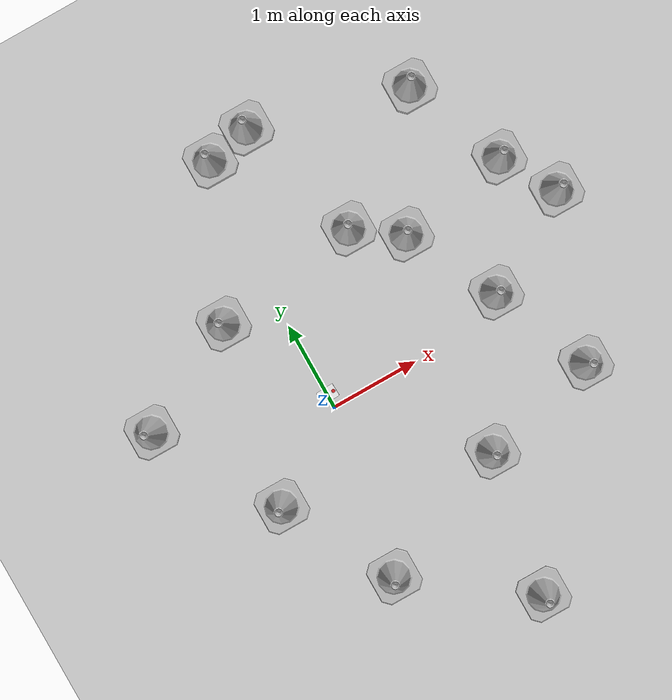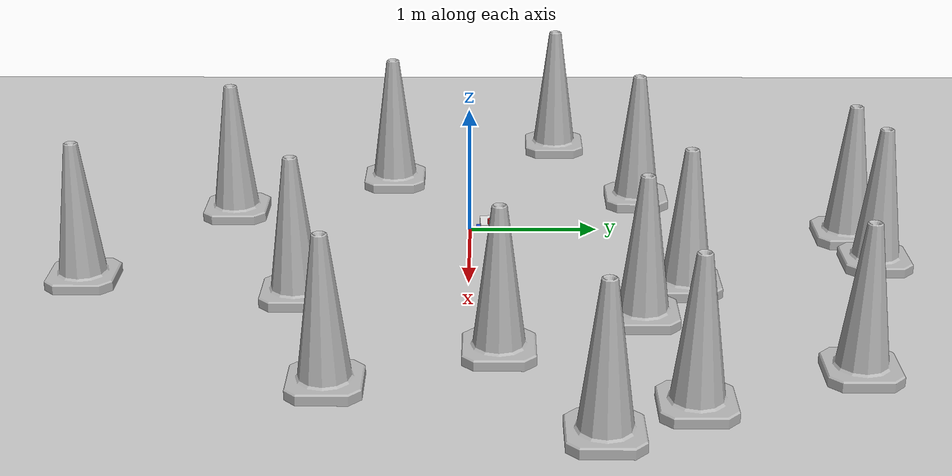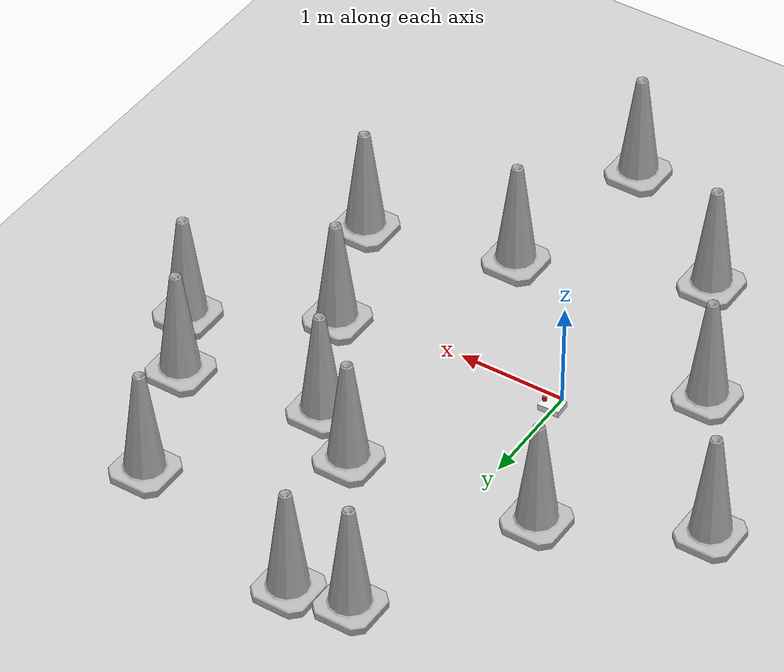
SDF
<sdf version="1.7">
 <world name="default">
  <light name="sun" type="directional">
   <pose>0 0 10 0 -0 0</pose>
   <diffuse>0.8 0.8 0.8 1</diffuse>
   <specular>0.2 0.2 0.2 1</specular>
   <attenuation>
    <range>1000</range>
    <constant>0.9</constant>
    <linear>0.01</linear>
    <quadratic>0.001</quadratic>
   </attenuation>
   <direction>-0.5 0.1 -0.9</direction>
   <spot><inner_angle>0</inner_angle><outer_angle>0</outer_angle><falloff>0</falloff></spot>
  </light>
  <model name="ground_plane">
   <static>1</static>
   <link name="link">
    <collision name="collision">
     <geometry><plane><normal>0 0 1</normal><size>100 100</size></plane></geometry>
     <surface><friction><ode><mu>100</mu><mu2>50</mu2></ode></friction></surface>
    </collision>
    <visual name="visual">
     <cast_shadows>0</cast_shadows>
     <geometry><plane><normal>0 0 1</normal><size>100 100</size></plane></geometry>
     <material>
      <script><uri>file://media/materials/scripts/gazebo.material</uri><name>Gazebo/Grey</name></script>
     </material>
    </visual>
   </link>
  </model>
  <gravity>0 0 -9.8</gravity>
  <magnetic_field>6e-06 2.3e-05 -4.2e-05</magnetic_field>
  <atmosphere type="adiabatic"/>
  <physics type="ode">
   <max_step_size>0.001</max_step_size>
   <real_time_factor>1</real_time_factor>
   <real_time_update_rate>1000</real_time_update_rate>
  </physics>
  <scene><ambient>0.4 0.4 0.4 1</ambient><background>0.7 0.7 0.7 1</background><shadows>1</shadows></scene>
  <audio><device>default</device></audio>
  <spherical_coordinates>
   <surface_model>EARTH_WGS84</surface_model>
   <latitude_deg>0</latitude_deg>
   <longitude_deg>0</longitude_deg>
   <elevation>0</elevation>
   <heading_deg>0</heading_deg>
  </spherical_coordinates>
  <model name="robot">
   <link name="base_link">
    <inertial>
     <pose>0.052857 0 0.032857 0 -0 0</pose>
     <mass>0.7</mass>
     <inertia>
      <ixx>0.00146276</ixx>
      <ixy>0</ixy>
      <ixz>0.000425714</ixz>
      <iyy>0.00668621</iyy>
      <iyz>0</iyz>
      <izz>0.00713609</izz>
     </inertia>
    </inertial>
    <collision name="base_link_fixed_joint_lump__chassis_collision">
     <pose>0.01 0 0.03 0 -0 0</pose>
     <geometry><box><size>0.2 0.15 0.06</size></box></geometry>
    </collision>
    <collision name="base_link_fixed_joint_lump__caster_wheel_collision_1">
     <pose>0.07 0 0 0 -0 0</pose>
     <geometry><sphere><radius>0.021</radius></sphere></geometry>
     <surface><friction><ode><mu>0.001</mu><mu2>0.001</mu2></ode></friction></surface>
    </collision>
    <collision name="base_link_fixed_joint_lump__laser_frame_collision_2">
     <pose>0.08 0 0.08 0 -0 0</pose>
     <geometry><cylinder><length>0.04</length><radius>0.02</radius></cylinder></geometry>
    </collision>
    <visual name="base_link_fixed_joint_lump__chassis_visual">
     <pose>0.01 0 0.03 0 -0 0</pose>
     <geometry><box><size>0.2 0.15 0.06</size></box></geometry>
     <material>
      <script><name>Gazebo/White</name><uri>file://media/materials/scripts/gazebo.material</uri></script>
     </material>
    </visual>
    <visual name="base_link_fixed_joint_lump__caster_wheel_visual_1">
     <pose>0.07 0 0 0 -0 0</pose>
     <geometry><sphere><radius>0.021</radius></sphere></geometry>
     <material>
      <script><name>Gazebo/Black</name><uri>file://media/materials/scripts/gazebo.material</uri></script>
     </material>
    </visual>
    <visual name="base_link_fixed_joint_lump__laser_frame_visual_2">
     <pose>0.08 0 0.08 0 -0 0</pose>
     <geometry><cylinder><length>0.04</length><radius>0.02</radius></cylinder></geometry>
     <material>
      <script><name>Gazebo/Red</name><uri>file://media/materials/scripts/gazebo.material</uri></script>
     </material>
    </visual>
    <sensor name="laser" type="ray">
     <visualize>0</visualize>
     <update_rate>10</update_rate>
     <ray>
      <scan>
       <horizontal>
        <samples>682</samples>
        <min_angle>-2.094</min_angle>
        <max_angle>2.094</max_angle>
        <resolution>1</resolution>
       </horizontal>
       <vertical><samples>1</samples><min_angle>0</min_angle><max_angle>0</max_angle></vertical>
      </scan>
      <range><min>0.06</min><max>12</max></range>
     </ray>
     <plugin name="laser_controller" filename="libgazebo_ros_ray_sensor.so">
      <ros><argument>~/out:=scan</argument></ros>
      <output_type>sensor_msgs/LaserScan</output_type>
      <frame_name>laser_frame</frame_name>
     </plugin>
     <pose>0.08 0 0.08 0 -0 0</pose>
    </sensor>
   </link>
   <joint name="left_wheel_joint" type="revolute">
    <pose relative_to="base_link">0 0.09 0 -1.5708 0 0</pose>
    <parent>base_link</parent>
    <child>left_wheel</child>
    <axis>
     <xyz>0 0 1</xyz>
     <limit><lower>-1e+16</lower><upper>1e+16</upper></limit>
     <dynamics><spring_reference>0</spring_reference><spring_stiffness>0</spring_stiffness></dynamics>
    </axis>
   </joint>
   <link name="left_wheel">
    <pose relative_to="left_wheel_joint">0 0 0 0 -0 0</pose>
    <inertial>
     <pose>0 0.09 0 0 -0 0</pose>
     <mass>0.1</mass>
     <inertia>
      <ixx>1.8525e-05</ixx>
      <ixy>0</ixy>
      <ixz>0</ixz>
      <iyy>1.8525e-05</iyy>
      <iyz>0</iyz>
      <izz>2.205e-05</izz>
     </inertia>
    </inertial>
    <collision name="left_wheel_collision">
     <geometry><sphere><radius>0.021</radius></sphere></geometry>
    </collision>
    <visual name="left_wheel_visual">
     <geometry><cylinder><length>0.03</length><radius>0.021</radius></cylinder></geometry>
     <material>
      <script><name>Gazebo/Blue</name><uri>file://media/materials/scripts/gazebo.material</uri></script>
     </material>
    </visual>
   </link>
   <joint name="right_wheel_joint" type="revolute">
    <pose relative_to="base_link">0 -0.09 0 1.5708 -0 0</pose>
    <parent>base_link</parent>
    <child>right_wheel</child>
    <axis>
     <xyz>0 0 -1</xyz>
     <limit><lower>-1e+16</lower><upper>1e+16</upper></limit>
     <dynamics><spring_reference>0</spring_reference><spring_stiffness>0</spring_stiffness></dynamics>
    </axis>
   </joint>
   <link name="right_wheel">
    <pose relative_to="right_wheel_joint">0 0 0 0 -0 0</pose>
    <inertial>
     <mass>0.1</mass>
     <inertia>
      <ixx>1.8525e-05</ixx>
      <ixy>0</ixy>
      <ixz>0</ixz>
      <iyy>1.8525e-05</iyy>
      <iyz>0</iyz>
      <izz>2.205e-05</izz>
     </inertia>
    </inertial>
    <collision name="right_wheel_collision">
     <geometry><sphere><radius>0.021</radius></sphere></geometry>
    </collision>
    <visual name="right_wheel_visual">
     <geometry><cylinder><length>0.03</length><radius>0.021</radius></cylinder></geometry>
     <material>
      <script><name>Gazebo/Blue</name><uri>file://media/materials/scripts/gazebo.material</uri></script>
     </material>
    </visual>
   </link>
   <static>0</static>
   <plugin name="gazebo_ros2_control" filename="libgazebo_ros2_control.so">
    <parameters>/home/mpinho/proj_ws/install/msc_aut_vehicles/share/msc_aut_vehicles/config/my_controllers.yaml</parameters>
   </plugin>
   <pose>-0.003486 0.156328 0.020998 -1.9e-05 -2.7e-05 0.042737</pose>
  </model>
  <model name="Construction Cone">
   <link name="link">
    <collision name="collision">
     <geometry>
      <mesh><scale>10 10 10</scale><uri>model://construction_cone/meshes/construction_cone.dae</uri></mesh>
     </geometry>
    </collision>
    <visual name="visual">
     <geometry>
      <mesh><scale>10 10 10</scale><uri>model://construction_cone/meshes/construction_cone.dae</uri></mesh>
     </geometry>
    </visual>
    <inertial>
     <inertia><ixx>1</ixx><ixy>0</ixy><ixz>0</ixz><iyy>1</iyy><iyz>0</iyz><izz>1</izz></inertia>
     <mass>1</mass>
    </inertial>
   </link>
   <pose>-0.596068 1.3663 -0 2e-06 -2e-06 -0</pose>
  </model>
  <model name="Construction Cone_0">
   <link name="link">
    <collision name="collision">
     <geometry>
      <mesh><scale>10 10 10</scale><uri>model://construction_cone/meshes/construction_cone.dae</uri></mesh>
     </geometry>
    </collision>
    <visual name="visual">
     <geometry>
      <mesh><scale>10 10 10</scale><uri>model://construction_cone/meshes/construction_cone.dae</uri></mesh>
     </geometry>
    </visual>
    <inertial>
     <inertia><ixx>1</ixx><ixy>0</ixy><ixz>0</ixz><iyy>1</iyy><iyz>0</iyz><izz>1</izz></inertia>
     <mass>1</mass>
    </inertial>
   </link>
   <pose>1.07751 1.59669 -0 0 -0 0</pose>
  </model>
  <model name="Construction Cone_1">
   <link name="link">
    <collision name="collision">
     <geometry>
      <mesh><scale>10 10 10</scale><uri>model://construction_cone/meshes/construction_cone.dae</uri></mesh>
     </geometry>
    </collision>
    <visual name="visual">
     <geometry>
      <mesh><scale>10 10 10</scale><uri>model://construction_cone/meshes/construction_cone.dae</uri></mesh>
     </geometry>
    </visual>
    <inertial>
     <inertia><ixx>1</ixx><ixy>0</ixy><ixz>0</ixz><iyy>1</iyy><iyz>0</iyz><izz>1</izz></inertia>
     <mass>1</mass>
    </inertial>
   </link>
   <pose>1.58772 1.23802 -0 0 -0 0</pose>
  </model>
  <model name="Construction Cone_2">
   <link name="link">
    <collision name="collision">
     <geometry>
      <mesh><scale>10 10 10</scale><uri>model://construction_cone/meshes/construction_cone.dae</uri></mesh>
     </geometry>
    </collision>
    <visual name="visual">
     <geometry>
      <mesh><scale>10 10 10</scale><uri>model://construction_cone/meshes/construction_cone.dae</uri></mesh>
     </geometry>
    </visual>
    <inertial>
     <inertia><ixx>1</ixx><ixy>0</ixy><ixz>0</ixz><iyy>1</iyy><iyz>0</iyz><izz>1</izz></inertia>
     <mass>1</mass>
    </inertial>
   </link>
   <pose>2.12055 0.218716 -0 0 -1e-06 0</pose>
  </model>
  <model name="Construction Cone_3">
   <link name="link">
    <collision name="collision">
     <geometry>
      <mesh><scale>10 10 10</scale><uri>model://construction_cone/meshes/construction_cone.dae</uri></mesh>
     </geometry>
    </collision>
    <visual name="visual">
     <geometry>
      <mesh><scale>10 10 10</scale><uri>model://construction_cone/meshes/construction_cone.dae</uri></mesh>
     </geometry>
    </visual>
    <inertial>
     <inertia><ixx>1</ixx><ixy>0</ixy><ixz>0</ixz><iyy>1</iyy><iyz>0</iyz><izz>1</izz></inertia>
     <mass>1</mass>
    </inertial>
   </link>
   <pose>0.141401 2.9613 -9e-06 2e-06 -0 0</pose>
  </model>
  <model name="Construction Cone_4">
   <link name="link">
    <collision name="collision">
     <geometry>
      <mesh><scale>10 10 10</scale><uri>model://construction_cone/meshes/construction_cone.dae</uri></mesh>
     </geometry>
    </collision>
    <visual name="visual">
     <geometry>
      <mesh><scale>10 10 10</scale><uri>model://construction_cone/meshes/construction_cone.dae</uri></mesh>
     </geometry>
    </visual>
    <inertial>
     <inertia><ixx>1</ixx><ixy>0</ixy><ixz>0</ixz><iyy>1</iyy><iyz>0</iyz><izz>1</izz></inertia>
     <mass>1</mass>
    </inertial>
   </link>
   <pose>1.2454 -1.24994 -0 0 -0 0</pose>
  </model>
  <model name="Construction Cone_5">
   <link name="link">
    <collision name="collision">
     <geometry>
      <mesh><scale>10 10 10</scale><uri>model://construction_cone/meshes/construction_cone.dae</uri></mesh>
     </geometry>
    </collision>
    <visual name="visual">
     <geometry>
      <mesh><scale>10 10 10</scale><uri>model://construction_cone/meshes/construction_cone.dae</uri></mesh>
     </geometry>
    </visual>
    <inertial>
     <inertia><ixx>1</ixx><ixy>0</ixy><ixz>0</ixz><iyy>1</iyy><iyz>0</iyz><izz>1</izz></inertia>
     <mass>1</mass>
    </inertial>
   </link>
   <pose>-1.01785 -0.649715 -0 0 -0 0</pose>
  </model>
  <model name="Construction Cone_6">
   <link name="link">
    <collision name="collision">
     <geometry>
      <mesh><scale>10 10 10</scale><uri>model://construction_cone/meshes/construction_cone.dae</uri></mesh>
     </geometry>
    </collision>
    <visual name="visual">
     <geometry>
      <mesh><scale>10 10 10</scale><uri>model://construction_cone/meshes/construction_cone.dae</uri></mesh>
     </geometry>
    </visual>
    <inertial>
     <inertia><ixx>1</ixx><ixy>0</ixy><ixz>0</ixz><iyy>1</iyy><iyz>0</iyz><izz>1</izz></inertia>
     <mass>1</mass>
    </inertial>
   </link>
   <pose>-0.337349 -1.90152 -5e-06 -4e-06 1e-06 0</pose>
  </model>
  <model name="Construction Cone_7">
   <link name="link">
    <collision name="collision">
     <geometry>
      <mesh><scale>10 10 10</scale><uri>model://construction_cone/meshes/construction_cone.dae</uri></mesh>
     </geometry>
    </collision>
    <visual name="visual">
     <geometry>
      <mesh><scale>10 10 10</scale><uri>model://construction_cone/meshes/construction_cone.dae</uri></mesh>
     </geometry>
    </visual>
    <inertial>
     <inertia><ixx>1</ixx><ixy>0</ixy><ixz>0</ixz><iyy>1</iyy><iyz>0</iyz><izz>1</izz></inertia>
     <mass>1</mass>
    </inertial>
   </link>
   <pose>2.58772 -0.913314 -6e-06 2e-06 -0 0</pose>
  </model>
  <model name="Construction Cone_8">
   <link name="link">
    <collision name="collision">
     <geometry>
      <mesh><scale>10 10 10</scale><uri>model://construction_cone/meshes/construction_cone.dae</uri></mesh>
     </geometry>
    </collision>
    <visual name="visual">
     <geometry>
      <mesh><scale>10 10 10</scale><uri>model://construction_cone/meshes/construction_cone.dae</uri></mesh>
     </geometry>
    </visual>
    <inertial>
     <inertia><ixx>1</ixx><ixy>0</ixy><ixz>0</ixz><iyy>1</iyy><iyz>0</iyz><izz>1</izz></inertia>
     <mass>1</mass>
    </inertial>
   </link>
   <pose>-1.84292 0.730994 0 -0 -0 -0</pose>
  </model>
  <model name="Construction Cone_9">
   <link name="link">
    <collision name="collision">
     <geometry>
      <mesh><scale>10 10 10</scale><uri>model://construction_cone/meshes/construction_cone.dae</uri></mesh>
     </geometry>
    </collision>
    <visual name="visual">
     <geometry>
      <mesh><scale>10 10 10</scale><uri>model://construction_cone/meshes/construction_cone.dae</uri></mesh>
     </geometry>
    </visual>
    <inertial>
     <inertia><ixx>1</ixx><ixy>0</ixy><ixz>0</ixz><iyy>1</iyy><iyz>0</iyz><izz>1</izz></inertia>
     <mass>1</mass>
    </inertial>
   </link>
   <pose>2.86545 1.4686 -0 0 -1e-06 0</pose>
  </model>
  <model name="Construction Cone_10">
   <link name="link">
    <collision name="collision">
     <geometry>
      <mesh><scale>10 10 10</scale><uri>model://construction_cone/meshes/construction_cone.dae</uri></mesh>
     </geometry>
    </collision>
    <visual name="visual">
     <geometry>
      <mesh><scale>10 10 10</scale><uri>model://construction_cone/meshes/construction_cone.dae</uri></mesh>
     </geometry>
    </visual>
    <inertial>
     <inertia><ixx>1</ixx><ixy>0</ixy><ixz>0</ixz><iyy>1</iyy><iyz>0</iyz><izz>1</izz></inertia>
     <mass>1</mass>
    </inertial>
   </link>
   <pose>2.40319 2.60672 -1e-05 0 -0 0</pose>
  </model>
  <model name="Construction Cone_11">
   <link name="link">
    <collision name="collision">
     <geometry>
      <mesh><scale>10 10 10</scale><uri>model://construction_cone/meshes/construction_cone.dae</uri></mesh>
     </geometry>
    </collision>
    <visual name="visual">
     <geometry>
      <mesh><scale>10 10 10</scale><uri>model://construction_cone/meshes/construction_cone.dae</uri></mesh>
     </geometry>
    </visual>
    <inertial>
     <inertia><ixx>1</ixx><ixy>0</ixy><ixz>0</ixz><iyy>1</iyy><iyz>0</iyz><izz>1</izz></inertia>
     <mass>1</mass>
    </inertial>
   </link>
   <pose>3.23014 0.86358 -3e-06 -3e-06 -1e-06 -0</pose>
  </model>
  <model name="Construction Cone_12">
   <link name="link">
    <collision name="collision">
     <geometry>
      <mesh><scale>10 10 10</scale><uri>model://construction_cone/meshes/construction_cone.dae</uri></mesh>
     </geometry>
    </collision>
    <visual name="visual">
     <geometry>
      <mesh><scale>10 10 10</scale><uri>model://construction_cone/meshes/construction_cone.dae</uri></mesh>
     </geometry>
    </visual>
    <inertial>
     <inertia><ixx>1</ixx><ixy>0</ixy><ixz>0</ixz><iyy>1</iyy><iyz>0</iyz><izz>1</izz></inertia>
     <mass>1</mass>
    </inertial>
   </link>
   <pose>0.653775 3.07852 -0 0 -0 0</pose>
  </model>
  <model name="Construction Cone_13">
   <link name="link">
    <collision name="collision">
     <geometry>
      <mesh><scale>10 10 10</scale><uri>model://construction_cone/meshes/construction_cone.dae</uri></mesh>
     </geometry>
    </collision>
    <visual name="visual">
     <geometry>
      <mesh><scale>10 10 10</scale><uri>model://construction_cone/meshes/construction_cone.dae</uri></mesh>
     </geometry>
    </visual>
    <inertial>
     <inertia><ixx>1</ixx><ixy>0</ixy><ixz>0</ixz><iyy>1</iyy><iyz>0</iyz><izz>1</izz></inertia>
     <mass>1</mass>
    </inertial>
   </link>
   <pose>0.966167 -2.85685 -0 0 -1e-06 0</pose>
  </model>
 </world>
</sdf>
